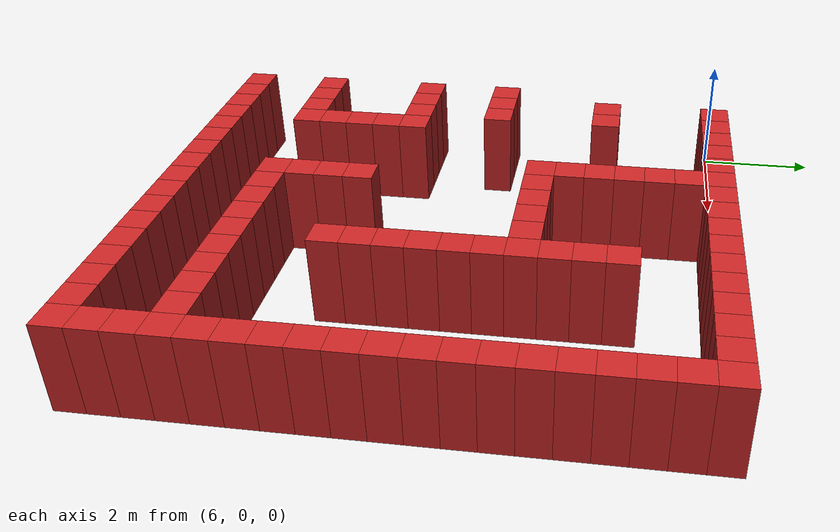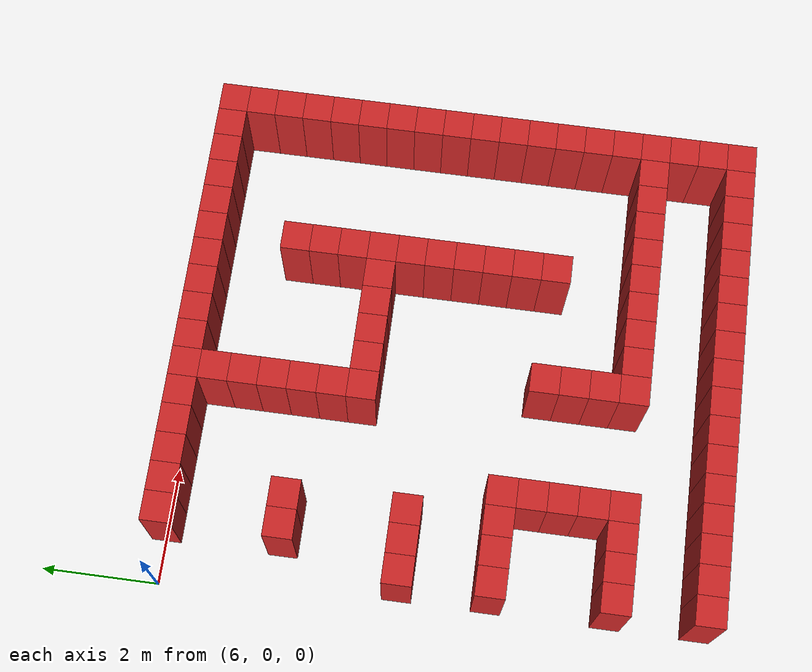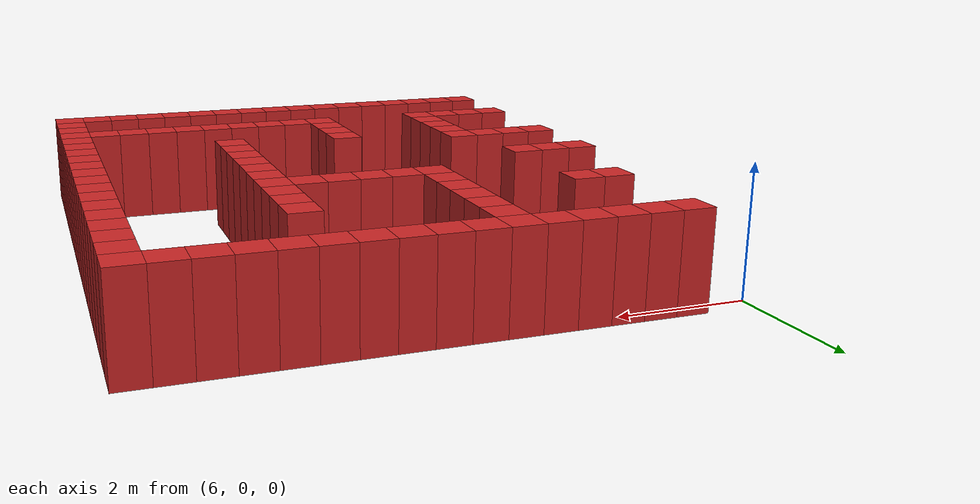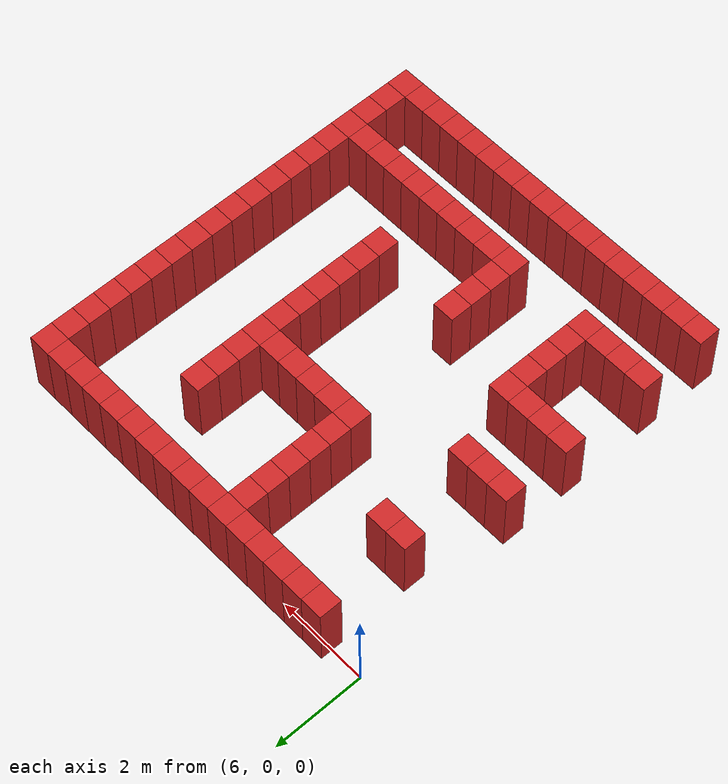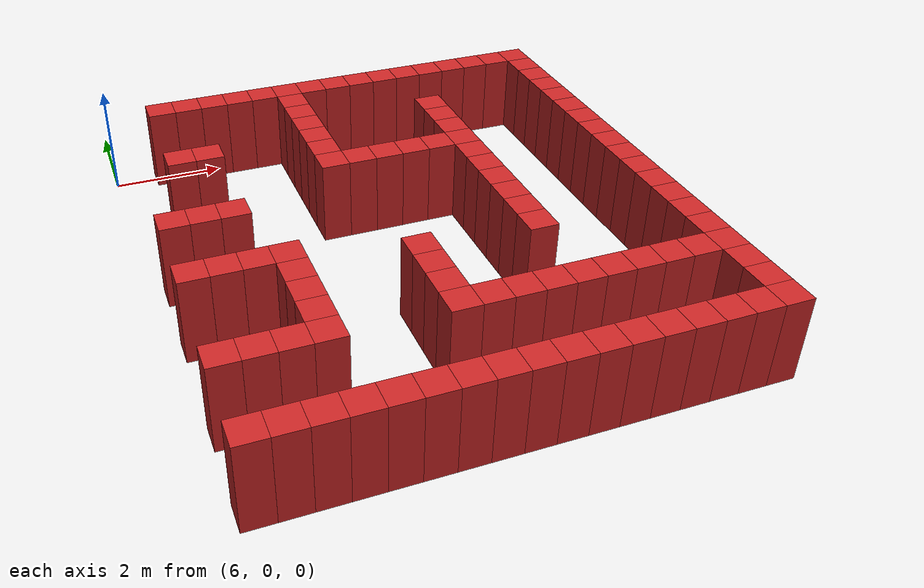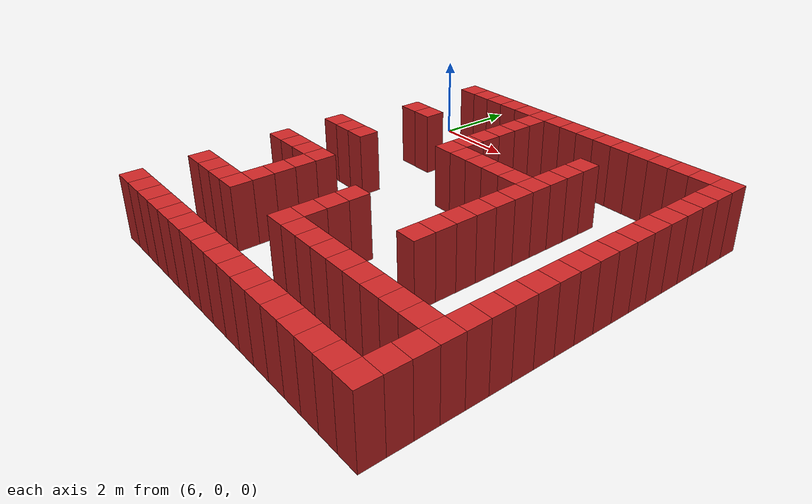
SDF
<sdf version="1.6">
 <model name="my_custom_world">
  <static>true</static>
  <link name="wall_14">
   <pose>7.0 0.0 0.75 0 0 0</pose>
   <collision name="collision"><geometry><box><size>0.5 0.5 1.5</size></box></geometry></collision>
   <visual name="visual">
    <geometry><box><size>0.5 0.5 1.5</size></box></geometry>
    <material>
     <script><uri>file://media/materials/scripts/gazebo.material</uri><name>Gazebo/Red</name></script>
    </material>
   </visual>
  </link>
  <link name="wall_15">
   <pose>7.5 0.0 0.75 0 0 0</pose>
   <collision name="collision"><geometry><box><size>0.5 0.5 1.5</size></box></geometry></collision>
   <visual name="visual">
    <geometry><box><size>0.5 0.5 1.5</size></box></geometry>
    <material>
     <script><uri>file://media/materials/scripts/gazebo.material</uri><name>Gazebo/Red</name></script>
    </material>
   </visual>
  </link>
  <link name="wall_16">
   <pose>8.0 0.0 0.75 0 0 0</pose>
   <collision name="collision"><geometry><box><size>0.5 0.5 1.5</size></box></geometry></collision>
   <visual name="visual">
    <geometry><box><size>0.5 0.5 1.5</size></box></geometry>
    <material>
     <script><uri>file://media/materials/scripts/gazebo.material</uri><name>Gazebo/Red</name></script>
    </material>
   </visual>
  </link>
  <link name="wall_17">
   <pose>8.5 0.0 0.75 0 0 0</pose>
   <collision name="collision"><geometry><box><size>0.5 0.5 1.5</size></box></geometry></collision>
   <visual name="visual">
    <geometry><box><size>0.5 0.5 1.5</size></box></geometry>
    <material>
     <script><uri>file://media/materials/scripts/gazebo.material</uri><name>Gazebo/Red</name></script>
    </material>
   </visual>
  </link>
  <link name="wall_18">
   <pose>9.0 0.0 0.75 0 0 0</pose>
   <collision name="collision"><geometry><box><size>0.5 0.5 1.5</size></box></geometry></collision>
   <visual name="visual">
    <geometry><box><size>0.5 0.5 1.5</size></box></geometry>
    <material>
     <script><uri>file://media/materials/scripts/gazebo.material</uri><name>Gazebo/Red</name></script>
    </material>
   </visual>
  </link>
  <link name="wall_19">
   <pose>9.5 0.0 0.75 0 0 0</pose>
   <collision name="collision"><geometry><box><size>0.5 0.5 1.5</size></box></geometry></collision>
   <visual name="visual">
    <geometry><box><size>0.5 0.5 1.5</size></box></geometry>
    <material>
     <script><uri>file://media/materials/scripts/gazebo.material</uri><name>Gazebo/Red</name></script>
    </material>
   </visual>
  </link>
  <link name="wall_20">
   <pose>10.0 0.0 0.75 0 0 0</pose>
   <collision name="collision"><geometry><box><size>0.5 0.5 1.5</size></box></geometry></collision>
   <visual name="visual">
    <geometry><box><size>0.5 0.5 1.5</size></box></geometry>
    <material>
     <script><uri>file://media/materials/scripts/gazebo.material</uri><name>Gazebo/Red</name></script>
    </material>
   </visual>
  </link>
  <link name="wall_21">
   <pose>10.5 0.0 0.75 0 0 0</pose>
   <collision name="collision"><geometry><box><size>0.5 0.5 1.5</size></box></geometry></collision>
   <visual name="visual">
    <geometry><box><size>0.5 0.5 1.5</size></box></geometry>
    <material>
     <script><uri>file://media/materials/scripts/gazebo.material</uri><name>Gazebo/Red</name></script>
    </material>
   </visual>
  </link>
  <link name="wall_22">
   <pose>11.0 0.0 0.75 0 0 0</pose>
   <collision name="collision"><geometry><box><size>0.5 0.5 1.5</size></box></geometry></collision>
   <visual name="visual">
    <geometry><box><size>0.5 0.5 1.5</size></box></geometry>
    <material>
     <script><uri>file://media/materials/scripts/gazebo.material</uri><name>Gazebo/Red</name></script>
    </material>
   </visual>
  </link>
  <link name="wall_23">
   <pose>11.5 0.0 0.75 0 0 0</pose>
   <collision name="collision"><geometry><box><size>0.5 0.5 1.5</size></box></geometry></collision>
   <visual name="visual">
    <geometry><box><size>0.5 0.5 1.5</size></box></geometry>
    <material>
     <script><uri>file://media/materials/scripts/gazebo.material</uri><name>Gazebo/Red</name></script>
    </material>
   </visual>
  </link>
  <link name="wall_24">
   <pose>12.0 0.0 0.75 0 0 0</pose>
   <collision name="collision"><geometry><box><size>0.5 0.5 1.5</size></box></geometry></collision>
   <visual name="visual">
    <geometry><box><size>0.5 0.5 1.5</size></box></geometry>
    <material>
     <script><uri>file://media/materials/scripts/gazebo.material</uri><name>Gazebo/Red</name></script>
    </material>
   </visual>
  </link>
  <link name="wall_25">
   <pose>12.5 0.0 0.75 0 0 0</pose>
   <collision name="collision"><geometry><box><size>0.5 0.5 1.5</size></box></geometry></collision>
   <visual name="visual">
    <geometry><box><size>0.5 0.5 1.5</size></box></geometry>
    <material>
     <script><uri>file://media/materials/scripts/gazebo.material</uri><name>Gazebo/Red</name></script>
    </material>
   </visual>
  </link>
  <link name="wall_26">
   <pose>13.0 0.0 0.75 0 0 0</pose>
   <collision name="collision"><geometry><box><size>0.5 0.5 1.5</size></box></geometry></collision>
   <visual name="visual">
    <geometry><box><size>0.5 0.5 1.5</size></box></geometry>
    <material>
     <script><uri>file://media/materials/scripts/gazebo.material</uri><name>Gazebo/Red</name></script>
    </material>
   </visual>
  </link>
  <link name="wall_27">
   <pose>13.5 0.0 0.75 0 0 0</pose>
   <collision name="collision"><geometry><box><size>0.5 0.5 1.5</size></box></geometry></collision>
   <visual name="visual">
    <geometry><box><size>0.5 0.5 1.5</size></box></geometry>
    <material>
     <script><uri>file://media/materials/scripts/gazebo.material</uri><name>Gazebo/Red</name></script>
    </material>
   </visual>
  </link>
  <link name="wall_28">
   <pose>14.0 0.0 0.75 0 0 0</pose>
   <collision name="collision"><geometry><box><size>0.5 0.5 1.5</size></box></geometry></collision>
   <visual name="visual">
    <geometry><box><size>0.5 0.5 1.5</size></box></geometry>
    <material>
     <script><uri>file://media/materials/scripts/gazebo.material</uri><name>Gazebo/Red</name></script>
    </material>
   </visual>
  </link>
  <link name="wall_29">
   <pose>14.5 0.0 0.75 0 0 0</pose>
   <collision name="collision"><geometry><box><size>0.5 0.5 1.5</size></box></geometry></collision>
   <visual name="visual">
    <geometry><box><size>0.5 0.5 1.5</size></box></geometry>
    <material>
     <script><uri>file://media/materials/scripts/gazebo.material</uri><name>Gazebo/Red</name></script>
    </material>
   </visual>
  </link>
  <link name="wall_33">
   <pose>9.5 -0.5 0.75 0 0 0</pose>
   <collision name="collision"><geometry><box><size>0.5 0.5 1.5</size></box></geometry></collision>
   <visual name="visual">
    <geometry><box><size>0.5 0.5 1.5</size></box></geometry>
    <material>
     <script><uri>file://media/materials/scripts/gazebo.material</uri><name>Gazebo/Red</name></script>
    </material>
   </visual>
  </link>
  <link name="wall_34">
   <pose>14.5 -0.5 0.75 0 0 0</pose>
   <collision name="collision"><geometry><box><size>0.5 0.5 1.5</size></box></geometry></collision>
   <visual name="visual">
    <geometry><box><size>0.5 0.5 1.5</size></box></geometry>
    <material>
     <script><uri>file://media/materials/scripts/gazebo.material</uri><name>Gazebo/Red</name></script>
    </material>
   </visual>
  </link>
  <link name="wall_38">
   <pose>9.5 -1.0 0.75 0 0 0</pose>
   <collision name="collision"><geometry><box><size>0.5 0.5 1.5</size></box></geometry></collision>
   <visual name="visual">
    <geometry><box><size>0.5 0.5 1.5</size></box></geometry>
    <material>
     <script><uri>file://media/materials/scripts/gazebo.material</uri><name>Gazebo/Red</name></script>
    </material>
   </visual>
  </link>
  <link name="wall_39">
   <pose>14.5 -1.0 0.75 0 0 0</pose>
   <collision name="collision"><geometry><box><size>0.5 0.5 1.5</size></box></geometry></collision>
   <visual name="visual">
    <geometry><box><size>0.5 0.5 1.5</size></box></geometry>
    <material>
     <script><uri>file://media/materials/scripts/gazebo.material</uri><name>Gazebo/Red</name></script>
    </material>
   </visual>
  </link>
  <link name="wall_43">
   <pose>9.5 -1.5 0.75 0 0 0</pose>
   <collision name="collision"><geometry><box><size>0.5 0.5 1.5</size></box></geometry></collision>
   <visual name="visual">
    <geometry><box><size>0.5 0.5 1.5</size></box></geometry>
    <material>
     <script><uri>file://media/materials/scripts/gazebo.material</uri><name>Gazebo/Red</name></script>
    </material>
   </visual>
  </link>
  <link name="wall_44">
   <pose>12.0 -1.5 0.75 0 0 0</pose>
   <collision name="collision"><geometry><box><size>0.5 0.5 1.5</size></box></geometry></collision>
   <visual name="visual">
    <geometry><box><size>0.5 0.5 1.5</size></box></geometry>
    <material>
     <script><uri>file://media/materials/scripts/gazebo.material</uri><name>Gazebo/Red</name></script>
    </material>
   </visual>
  </link>
  <link name="wall_45">
   <pose>14.5 -1.5 0.75 0 0 0</pose>
   <collision name="collision"><geometry><box><size>0.5 0.5 1.5</size></box></geometry></collision>
   <visual name="visual">
    <geometry><box><size>0.5 0.5 1.5</size></box></geometry>
    <material>
     <script><uri>file://media/materials/scripts/gazebo.material</uri><name>Gazebo/Red</name></script>
    </material>
   </visual>
  </link>
  <link name="wall_53">
   <pose>7.0 -2.0 0.75 0 0 0</pose>
   <collision name="collision"><geometry><box><size>0.5 0.5 1.5</size></box></geometry></collision>
   <visual name="visual">
    <geometry><box><size>0.5 0.5 1.5</size></box></geometry>
    <material>
     <script><uri>file://media/materials/scripts/gazebo.material</uri><name>Gazebo/Red</name></script>
    </material>
   </visual>
  </link>
  <link name="wall_54">
   <pose>7.5 -2.0 0.75 0 0 0</pose>
   <collision name="collision"><geometry><box><size>0.5 0.5 1.5</size></box></geometry></collision>
   <visual name="visual">
    <geometry><box><size>0.5 0.5 1.5</size></box></geometry>
    <material>
     <script><uri>file://media/materials/scripts/gazebo.material</uri><name>Gazebo/Red</name></script>
    </material>
   </visual>
  </link>
  <link name="wall_55">
   <pose>9.5 -2.0 0.75 0 0 0</pose>
   <collision name="collision"><geometry><box><size>0.5 0.5 1.5</size></box></geometry></collision>
   <visual name="visual">
    <geometry><box><size>0.5 0.5 1.5</size></box></geometry>
    <material>
     <script><uri>file://media/materials/scripts/gazebo.material</uri><name>Gazebo/Red</name></script>
    </material>
   </visual>
  </link>
  <link name="wall_56">
   <pose>12.0 -2.0 0.75 0 0 0</pose>
   <collision name="collision"><geometry><box><size>0.5 0.5 1.5</size></box></geometry></collision>
   <visual name="visual">
    <geometry><box><size>0.5 0.5 1.5</size></box></geometry>
    <material>
     <script><uri>file://media/materials/scripts/gazebo.material</uri><name>Gazebo/Red</name></script>
    </material>
   </visual>
  </link>
  <link name="wall_57">
   <pose>14.5 -2.0 0.75 0 0 0</pose>
   <collision name="collision"><geometry><box><size>0.5 0.5 1.5</size></box></geometry></collision>
   <visual name="visual">
    <geometry><box><size>0.5 0.5 1.5</size></box></geometry>
    <material>
     <script><uri>file://media/materials/scripts/gazebo.material</uri><name>Gazebo/Red</name></script>
    </material>
   </visual>
  </link>
  <link name="wall_60">
   <pose>9.5 -2.5 0.75 0 0 0</pose>
   <collision name="collision"><geometry><box><size>0.5 0.5 1.5</size></box></geometry></collision>
   <visual name="visual">
    <geometry><box><size>0.5 0.5 1.5</size></box></geometry>
    <material>
     <script><uri>file://media/materials/scripts/gazebo.material</uri><name>Gazebo/Red</name></script>
    </material>
   </visual>
  </link>
  <link name="wall_61">
   <pose>12.0 -2.5 0.75 0 0 0</pose>
   <collision name="collision"><geometry><box><size>0.5 0.5 1.5</size></box></geometry></collision>
   <visual name="visual">
    <geometry><box><size>0.5 0.5 1.5</size></box></geometry>
    <material>
     <script><uri>file://media/materials/scripts/gazebo.material</uri><name>Gazebo/Red</name></script>
    </material>
   </visual>
  </link>
  <link name="wall_62">
   <pose>14.5 -2.5 0.75 0 0 0</pose>
   <collision name="collision"><geometry><box><size>0.5 0.5 1.5</size></box></geometry></collision>
   <visual name="visual">
    <geometry><box><size>0.5 0.5 1.5</size></box></geometry>
    <material>
     <script><uri>file://media/materials/scripts/gazebo.material</uri><name>Gazebo/Red</name></script>
    </material>
   </visual>
  </link>
  <link name="wall_65">
   <pose>9.5 -3.0 0.75 0 0 0</pose>
   <collision name="collision"><geometry><box><size>0.5 0.5 1.5</size></box></geometry></collision>
   <visual name="visual">
    <geometry><box><size>0.5 0.5 1.5</size></box></geometry>
    <material>
     <script><uri>file://media/materials/scripts/gazebo.material</uri><name>Gazebo/Red</name></script>
    </material>
   </visual>
  </link>
  <link name="wall_66">
   <pose>10.0 -3.0 0.75 0 0 0</pose>
   <collision name="collision"><geometry><box><size>0.5 0.5 1.5</size></box></geometry></collision>
   <visual name="visual">
    <geometry><box><size>0.5 0.5 1.5</size></box></geometry>
    <material>
     <script><uri>file://media/materials/scripts/gazebo.material</uri><name>Gazebo/Red</name></script>
    </material>
   </visual>
  </link>
  <link name="wall_67">
   <pose>10.5 -3.0 0.75 0 0 0</pose>
   <collision name="collision"><geometry><box><size>0.5 0.5 1.5</size></box></geometry></collision>
   <visual name="visual">
    <geometry><box><size>0.5 0.5 1.5</size></box></geometry>
    <material>
     <script><uri>file://media/materials/scripts/gazebo.material</uri><name>Gazebo/Red</name></script>
    </material>
   </visual>
  </link>
  <link name="wall_68">
   <pose>11.0 -3.0 0.75 0 0 0</pose>
   <collision name="collision"><geometry><box><size>0.5 0.5 1.5</size></box></geometry></collision>
   <visual name="visual">
    <geometry><box><size>0.5 0.5 1.5</size></box></geometry>
    <material>
     <script><uri>file://media/materials/scripts/gazebo.material</uri><name>Gazebo/Red</name></script>
    </material>
   </visual>
  </link>
  <link name="wall_69">
   <pose>11.5 -3.0 0.75 0 0 0</pose>
   <collision name="collision"><geometry><box><size>0.5 0.5 1.5</size></box></geometry></collision>
   <visual name="visual">
    <geometry><box><size>0.5 0.5 1.5</size></box></geometry>
    <material>
     <script><uri>file://media/materials/scripts/gazebo.material</uri><name>Gazebo/Red</name></script>
    </material>
   </visual>
  </link>
  <link name="wall_70">
   <pose>12.0 -3.0 0.75 0 0 0</pose>
   <collision name="collision"><geometry><box><size>0.5 0.5 1.5</size></box></geometry></collision>
   <visual name="visual">
    <geometry><box><size>0.5 0.5 1.5</size></box></geometry>
    <material>
     <script><uri>file://media/materials/scripts/gazebo.material</uri><name>Gazebo/Red</name></script>
    </material>
   </visual>
  </link>
  <link name="wall_71">
   <pose>14.5 -3.0 0.75 0 0 0</pose>
   <collision name="collision"><geometry><box><size>0.5 0.5 1.5</size></box></geometry></collision>
   <visual name="visual">
    <geometry><box><size>0.5 0.5 1.5</size></box></geometry>
    <material>
     <script><uri>file://media/materials/scripts/gazebo.material</uri><name>Gazebo/Red</name></script>
    </material>
   </visual>
  </link>
  <link name="wall_78">
   <pose>12.0 -3.5 0.75 0 0 0</pose>
   <collision name="collision"><geometry><box><size>0.5 0.5 1.5</size></box></geometry></collision>
   <visual name="visual">
    <geometry><box><size>0.5 0.5 1.5</size></box></geometry>
    <material>
     <script><uri>file://media/materials/scripts/gazebo.material</uri><name>Gazebo/Red</name></script>
    </material>
   </visual>
  </link>
  <link name="wall_79">
   <pose>14.5 -3.5 0.75 0 0 0</pose>
   <collision name="collision"><geometry><box><size>0.5 0.5 1.5</size></box></geometry></collision>
   <visual name="visual">
    <geometry><box><size>0.5 0.5 1.5</size></box></geometry>
    <material>
     <script><uri>file://media/materials/scripts/gazebo.material</uri><name>Gazebo/Red</name></script>
    </material>
   </visual>
  </link>
  <link name="wall_91">
   <pose>6.5 -4.0 0.75 0 0 0</pose>
   <collision name="collision"><geometry><box><size>0.5 0.5 1.5</size></box></geometry></collision>
   <visual name="visual">
    <geometry><box><size>0.5 0.5 1.5</size></box></geometry>
    <material>
     <script><uri>file://media/materials/scripts/gazebo.material</uri><name>Gazebo/Red</name></script>
    </material>
   </visual>
  </link>
  <link name="wall_92">
   <pose>7.0 -4.0 0.75 0 0 0</pose>
   <collision name="collision"><geometry><box><size>0.5 0.5 1.5</size></box></geometry></collision>
   <visual name="visual">
    <geometry><box><size>0.5 0.5 1.5</size></box></geometry>
    <material>
     <script><uri>file://media/materials/scripts/gazebo.material</uri><name>Gazebo/Red</name></script>
    </material>
   </visual>
  </link>
  <link name="wall_93">
   <pose>7.5 -4.0 0.75 0 0 0</pose>
   <collision name="collision"><geometry><box><size>0.5 0.5 1.5</size></box></geometry></collision>
   <visual name="visual">
    <geometry><box><size>0.5 0.5 1.5</size></box></geometry>
    <material>
     <script><uri>file://media/materials/scripts/gazebo.material</uri><name>Gazebo/Red</name></script>
    </material>
   </visual>
  </link>
  <link name="wall_94">
   <pose>12.0 -4.0 0.75 0 0 0</pose>
   <collision name="collision"><geometry><box><size>0.5 0.5 1.5</size></box></geometry></collision>
   <visual name="visual">
    <geometry><box><size>0.5 0.5 1.5</size></box></geometry>
    <material>
     <script><uri>file://media/materials/scripts/gazebo.material</uri><name>Gazebo/Red</name></script>
    </material>
   </visual>
  </link>
  <link name="wall_95">
   <pose>14.5 -4.0 0.75 0 0 0</pose>
   <collision name="collision"><geometry><box><size>0.5 0.5 1.5</size></box></geometry></collision>
   <visual name="visual">
    <geometry><box><size>0.5 0.5 1.5</size></box></geometry>
    <material>
     <script><uri>file://media/materials/scripts/gazebo.material</uri><name>Gazebo/Red</name></script>
    </material>
   </visual>
  </link>
  <link name="wall_97">
   <pose>12.0 -4.5 0.75 0 0 0</pose>
   <collision name="collision"><geometry><box><size>0.5 0.5 1.5</size></box></geometry></collision>
   <visual name="visual">
    <geometry><box><size>0.5 0.5 1.5</size></box></geometry>
    <material>
     <script><uri>file://media/materials/scripts/gazebo.material</uri><name>Gazebo/Red</name></script>
    </material>
   </visual>
  </link>
  <link name="wall_98">
   <pose>14.5 -4.5 0.75 0 0 0</pose>
   <collision name="collision"><geometry><box><size>0.5 0.5 1.5</size></box></geometry></collision>
   <visual name="visual">
    <geometry><box><size>0.5 0.5 1.5</size></box></geometry>
    <material>
     <script><uri>file://media/materials/scripts/gazebo.material</uri><name>Gazebo/Red</name></script>
    </material>
   </visual>
  </link>
  <link name="wall_100">
   <pose>12.0 -5.0 0.75 0 0 0</pose>
   <collision name="collision"><geometry><box><size>0.5 0.5 1.5</size></box></geometry></collision>
   <visual name="visual">
    <geometry><box><size>0.5 0.5 1.5</size></box></geometry>
    <material>
     <script><uri>file://media/materials/scripts/gazebo.material</uri><name>Gazebo/Red</name></script>
    </material>
   </visual>
  </link>
  <link name="wall_101">
   <pose>14.5 -5.0 0.75 0 0 0</pose>
   <collision name="collision"><geometry><box><size>0.5 0.5 1.5</size></box></geometry></collision>
   <visual name="visual">
    <geometry><box><size>0.5 0.5 1.5</size></box></geometry>
    <material>
     <script><uri>file://media/materials/scripts/gazebo.material</uri><name>Gazebo/Red</name></script>
    </material>
   </visual>
  </link>
  <link name="wall_115">
   <pose>6.5 -5.5 0.75 0 0 0</pose>
   <collision name="collision"><geometry><box><size>0.5 0.5 1.5</size></box></geometry></collision>
   <visual name="visual">
    <geometry><box><size>0.5 0.5 1.5</size></box></geometry>
    <material>
     <script><uri>file://media/materials/scripts/gazebo.material</uri><name>Gazebo/Red</name></script>
    </material>
   </visual>
  </link>
  <link name="wall_116">
   <pose>7.0 -5.5 0.75 0 0 0</pose>
   <collision name="collision"><geometry><box><size>0.5 0.5 1.5</size></box></geometry></collision>
   <visual name="visual">
    <geometry><box><size>0.5 0.5 1.5</size></box></geometry>
    <material>
     <script><uri>file://media/materials/scripts/gazebo.material</uri><name>Gazebo/Red</name></script>
    </material>
   </visual>
  </link>
  <link name="wall_117">
   <pose>7.5 -5.5 0.75 0 0 0</pose>
   <collision name="collision"><geometry><box><size>0.5 0.5 1.5</size></box></geometry></collision>
   <visual name="visual">
    <geometry><box><size>0.5 0.5 1.5</size></box></geometry>
    <material>
     <script><uri>file://media/materials/scripts/gazebo.material</uri><name>Gazebo/Red</name></script>
    </material>
   </visual>
  </link>
  <link name="wall_118">
   <pose>8.0 -5.5 0.75 0 0 0</pose>
   <collision name="collision"><geometry><box><size>0.5 0.5 1.5</size></box></geometry></collision>
   <visual name="visual">
    <geometry><box><size>0.5 0.5 1.5</size></box></geometry>
    <material>
     <script><uri>file://media/materials/scripts/gazebo.material</uri><name>Gazebo/Red</name></script>
    </material>
   </visual>
  </link>
  <link name="wall_119">
   <pose>12.0 -5.5 0.75 0 0 0</pose>
   <collision name="collision"><geometry><box><size>0.5 0.5 1.5</size></box></geometry></collision>
   <visual name="visual">
    <geometry><box><size>0.5 0.5 1.5</size></box></geometry>
    <material>
     <script><uri>file://media/materials/scripts/gazebo.material</uri><name>Gazebo/Red</name></script>
    </material>
   </visual>
  </link>
  <link name="wall_120">
   <pose>14.5 -5.5 0.75 0 0 0</pose>
   <collision name="collision"><geometry><box><size>0.5 0.5 1.5</size></box></geometry></collision>
   <visual name="visual">
    <geometry><box><size>0.5 0.5 1.5</size></box></geometry>
    <material>
     <script><uri>file://media/materials/scripts/gazebo.material</uri><name>Gazebo/Red</name></script>
    </material>
   </visual>
  </link>
  <link name="wall_122">
   <pose>8.0 -6.0 0.75 0 0 0</pose>
   <collision name="collision"><geometry><box><size>0.5 0.5 1.5</size></box></geometry></collision>
   <visual name="visual">
    <geometry><box><size>0.5 0.5 1.5</size></box></geometry>
    <material>
     <script><uri>file://media/materials/scripts/gazebo.material</uri><name>Gazebo/Red</name></script>
    </material>
   </visual>
  </link>
  <link name="wall_123">
   <pose>10.0 -6.0 0.75 0 0 0</pose>
   <collision name="collision"><geometry><box><size>0.5 0.5 1.5</size></box></geometry></collision>
   <visual name="visual">
    <geometry><box><size>0.5 0.5 1.5</size></box></geometry>
    <material>
     <script><uri>file://media/materials/scripts/gazebo.material</uri><name>Gazebo/Red</name></script>
    </material>
   </visual>
  </link>
  <link name="wall_124">
   <pose>12.0 -6.0 0.75 0 0 0</pose>
   <collision name="collision"><geometry><box><size>0.5 0.5 1.5</size></box></geometry></collision>
   <visual name="visual">
    <geometry><box><size>0.5 0.5 1.5</size></box></geometry>
    <material>
     <script><uri>file://media/materials/scripts/gazebo.material</uri><name>Gazebo/Red</name></script>
    </material>
   </visual>
  </link>
  <link name="wall_125">
   <pose>14.5 -6.0 0.75 0 0 0</pose>
   <collision name="collision"><geometry><box><size>0.5 0.5 1.5</size></box></geometry></collision>
   <visual name="visual">
    <geometry><box><size>0.5 0.5 1.5</size></box></geometry>
    <material>
     <script><uri>file://media/materials/scripts/gazebo.material</uri><name>Gazebo/Red</name></script>
    </material>
   </visual>
  </link>
  <link name="wall_127">
   <pose>8.0 -6.5 0.75 0 0 0</pose>
   <collision name="collision"><geometry><box><size>0.5 0.5 1.5</size></box></geometry></collision>
   <visual name="visual">
    <geometry><box><size>0.5 0.5 1.5</size></box></geometry>
    <material>
     <script><uri>file://media/materials/scripts/gazebo.material</uri><name>Gazebo/Red</name></script>
    </material>
   </visual>
  </link>
  <link name="wall_128">
   <pose>10.0 -6.5 0.75 0 0 0</pose>
   <collision name="collision"><geometry><box><size>0.5 0.5 1.5</size></box></geometry></collision>
   <visual name="visual">
    <geometry><box><size>0.5 0.5 1.5</size></box></geometry>
    <material>
     <script><uri>file://media/materials/scripts/gazebo.material</uri><name>Gazebo/Red</name></script>
    </material>
   </visual>
  </link>
  <link name="wall_129">
   <pose>14.5 -6.5 0.75 0 0 0</pose>
   <collision name="collision"><geometry><box><size>0.5 0.5 1.5</size></box></geometry></collision>
   <visual name="visual">
    <geometry><box><size>0.5 0.5 1.5</size></box></geometry>
    <material>
     <script><uri>file://media/materials/scripts/gazebo.material</uri><name>Gazebo/Red</name></script>
    </material>
   </visual>
  </link>
  <link name="wall_140">
   <pose>8.0 -7.0 0.75 0 0 0</pose>
   <collision name="collision"><geometry><box><size>0.5 0.5 1.5</size></box></geometry></collision>
   <visual name="visual">
    <geometry><box><size>0.5 0.5 1.5</size></box></geometry>
    <material>
     <script><uri>file://media/materials/scripts/gazebo.material</uri><name>Gazebo/Red</name></script>
    </material>
   </visual>
  </link>
  <link name="wall_141">
   <pose>10.0 -7.0 0.75 0 0 0</pose>
   <collision name="collision"><geometry><box><size>0.5 0.5 1.5</size></box></geometry></collision>
   <visual name="visual">
    <geometry><box><size>0.5 0.5 1.5</size></box></geometry>
    <material>
     <script><uri>file://media/materials/scripts/gazebo.material</uri><name>Gazebo/Red</name></script>
    </material>
   </visual>
  </link>
  <link name="wall_142">
   <pose>14.5 -7.0 0.75 0 0 0</pose>
   <collision name="collision"><geometry><box><size>0.5 0.5 1.5</size></box></geometry></collision>
   <visual name="visual">
    <geometry><box><size>0.5 0.5 1.5</size></box></geometry>
    <material>
     <script><uri>file://media/materials/scripts/gazebo.material</uri><name>Gazebo/Red</name></script>
    </material>
   </visual>
  </link>
  <link name="wall_149">
   <pose>6.5 -7.5 0.75 0 0 0</pose>
   <collision name="collision"><geometry><box><size>0.5 0.5 1.5</size></box></geometry></collision>
   <visual name="visual">
    <geometry><box><size>0.5 0.5 1.5</size></box></geometry>
    <material>
     <script><uri>file://media/materials/scripts/gazebo.material</uri><name>Gazebo/Red</name></script>
    </material>
   </visual>
  </link>
  <link name="wall_150">
   <pose>7.0 -7.5 0.75 0 0 0</pose>
   <collision name="collision"><geometry><box><size>0.5 0.5 1.5</size></box></geometry></collision>
   <visual name="visual">
    <geometry><box><size>0.5 0.5 1.5</size></box></geometry>
    <material>
     <script><uri>file://media/materials/scripts/gazebo.material</uri><name>Gazebo/Red</name></script>
    </material>
   </visual>
  </link>
  <link name="wall_151">
   <pose>7.5 -7.5 0.75 0 0 0</pose>
   <collision name="collision"><geometry><box><size>0.5 0.5 1.5</size></box></geometry></collision>
   <visual name="visual">
    <geometry><box><size>0.5 0.5 1.5</size></box></geometry>
    <material>
     <script><uri>file://media/materials/scripts/gazebo.material</uri><name>Gazebo/Red</name></script>
    </material>
   </visual>
  </link>
  <link name="wall_152">
   <pose>8.0 -7.5 0.75 0 0 0</pose>
   <collision name="collision"><geometry><box><size>0.5 0.5 1.5</size></box></geometry></collision>
   <visual name="visual">
    <geometry><box><size>0.5 0.5 1.5</size></box></geometry>
    <material>
     <script><uri>file://media/materials/scripts/gazebo.material</uri><name>Gazebo/Red</name></script>
    </material>
   </visual>
  </link>
  <link name="wall_153">
   <pose>10.0 -7.5 0.75 0 0 0</pose>
   <collision name="collision"><geometry><box><size>0.5 0.5 1.5</size></box></geometry></collision>
   <visual name="visual">
    <geometry><box><size>0.5 0.5 1.5</size></box></geometry>
    <material>
     <script><uri>file://media/materials/scripts/gazebo.material</uri><name>Gazebo/Red</name></script>
    </material>
   </visual>
  </link>
  <link name="wall_154">
   <pose>10.5 -7.5 0.75 0 0 0</pose>
   <collision name="collision"><geometry><box><size>0.5 0.5 1.5</size></box></geometry></collision>
   <visual name="visual">
    <geometry><box><size>0.5 0.5 1.5</size></box></geometry>
    <material>
     <script><uri>file://media/materials/scripts/gazebo.material</uri><name>Gazebo/Red</name></script>
    </material>
   </visual>
  </link>
  <link name="wall_155">
   <pose>11.0 -7.5 0.75 0 0 0</pose>
   <collision name="collision"><geometry><box><size>0.5 0.5 1.5</size></box></geometry></collision>
   <visual name="visual">
    <geometry><box><size>0.5 0.5 1.5</size></box></geometry>
    <material>
     <script><uri>file://media/materials/scripts/gazebo.material</uri><name>Gazebo/Red</name></script>
    </material>
   </visual>
  </link>
  <link name="wall_156">
   <pose>11.5 -7.5 0.75 0 0 0</pose>
   <collision name="collision"><geometry><box><size>0.5 0.5 1.5</size></box></geometry></collision>
   <visual name="visual">
    <geometry><box><size>0.5 0.5 1.5</size></box></geometry>
    <material>
     <script><uri>file://media/materials/scripts/gazebo.material</uri><name>Gazebo/Red</name></script>
    </material>
   </visual>
  </link>
  <link name="wall_157">
   <pose>12.0 -7.5 0.75 0 0 0</pose>
   <collision name="collision"><geometry><box><size>0.5 0.5 1.5</size></box></geometry></collision>
   <visual name="visual">
    <geometry><box><size>0.5 0.5 1.5</size></box></geometry>
    <material>
     <script><uri>file://media/materials/scripts/gazebo.material</uri><name>Gazebo/Red</name></script>
    </material>
   </visual>
  </link>
  <link name="wall_158">
   <pose>12.5 -7.5 0.75 0 0 0</pose>
   <collision name="collision"><geometry><box><size>0.5 0.5 1.5</size></box></geometry></collision>
   <visual name="visual">
    <geometry><box><size>0.5 0.5 1.5</size></box></geometry>
    <material>
     <script><uri>file://media/materials/scripts/gazebo.material</uri><name>Gazebo/Red</name></script>
    </material>
   </visual>
  </link>
  <link name="wall_159">
   <pose>13.0 -7.5 0.75 0 0 0</pose>
   <collision name="collision"><geometry><box><size>0.5 0.5 1.5</size></box></geometry></collision>
   <visual name="visual">
    <geometry><box><size>0.5 0.5 1.5</size></box></geometry>
    <material>
     <script><uri>file://media/materials/scripts/gazebo.material</uri><name>Gazebo/Red</name></script>
    </material>
   </visual>
  </link>
  <link name="wall_160">
   <pose>13.5 -7.5 0.75 0 0 0</pose>
   <collision name="collision"><geometry><box><size>0.5 0.5 1.5</size></box></geometry></collision>
   <visual name="visual">
    <geometry><box><size>0.5 0.5 1.5</size></box></geometry>
    <material>
     <script><uri>file://media/materials/scripts/gazebo.material</uri><name>Gazebo/Red</name></script>
    </material>
   </visual>
  </link>
  <link name="wall_161">
   <pose>14.0 -7.5 0.75 0 0 0</pose>
   <collision name="collision"><geometry><box><size>0.5 0.5 1.5</size></box></geometry></collision>
   <visual name="visual">
    <geometry><box><size>0.5 0.5 1.5</size></box></geometry>
    <material>
     <script><uri>file://media/materials/scripts/gazebo.material</uri><name>Gazebo/Red</name></script>
    </material>
   </visual>
  </link>
  <link name="wall_162">
   <pose>14.5 -7.5 0.75 0 0 0</pose>
   <collision name="collision"><geometry><box><size>0.5 0.5 1.5</size></box></geometry></collision>
   <visual name="visual">
    <geometry><box><size>0.5 0.5 1.5</size></box></geometry>
    <material>
     <script><uri>file://media/materials/scripts/gazebo.material</uri><name>Gazebo/Red</name></script>
    </material>
   </visual>
  </link>
  <link name="wall_164">
   <pose>14.5 -8.0 0.75 0 0 0</pose>
   <collision name="collision"><geometry><box><size>0.5 0.5 1.5</size></box></geometry></collision>
   <visual name="visual">
    <geometry><box><size>0.5 0.5 1.5</size></box></geometry>
    <material>
     <script><uri>file://media/materials/scripts/gazebo.material</uri><name>Gazebo/Red</name></script>
    </material>
   </visual>
  </link>
  <link name="wall_166">
   <pose>14.5 -8.5 0.75 0 0 0</pose>
   <collision name="collision"><geometry><box><size>0.5 0.5 1.5</size></box></geometry></collision>
   <visual name="visual">
    <geometry><box><size>0.5 0.5 1.5</size></box></geometry>
    <material>
     <script><uri>file://media/materials/scripts/gazebo.material</uri><name>Gazebo/Red</name></script>
    </material>
   </visual>
  </link>
  <link name="wall_180">
   <pose>6.5 -9.0 0.75 0 0 0</pose>
   <collision name="collision"><geometry><box><size>0.5 0.5 1.5</size></box></geometry></collision>
   <visual name="visual">
    <geometry><box><size>0.5 0.5 1.5</size></box></geometry>
    <material>
     <script><uri>file://media/materials/scripts/gazebo.material</uri><name>Gazebo/Red</name></script>
    </material>
   </visual>
  </link>
  <link name="wall_181">
   <pose>7.0 -9.0 0.75 0 0 0</pose>
   <collision name="collision"><geometry><box><size>0.5 0.5 1.5</size></box></geometry></collision>
   <visual name="visual">
    <geometry><box><size>0.5 0.5 1.5</size></box></geometry>
    <material>
     <script><uri>file://media/materials/scripts/gazebo.material</uri><name>Gazebo/Red</name></script>
    </material>
   </visual>
  </link>
  <link name="wall_182">
   <pose>7.5 -9.0 0.75 0 0 0</pose>
   <collision name="collision"><geometry><box><size>0.5 0.5 1.5</size></box></geometry></collision>
   <visual name="visual">
    <geometry><box><size>0.5 0.5 1.5</size></box></geometry>
    <material>
     <script><uri>file://media/materials/scripts/gazebo.material</uri><name>Gazebo/Red</name></script>
    </material>
   </visual>
  </link>
  <link name="wall_183">
   <pose>8.0 -9.0 0.75 0 0 0</pose>
   <collision name="collision"><geometry><box><size>0.5 0.5 1.5</size></box></geometry></collision>
   <visual name="visual">
    <geometry><box><size>0.5 0.5 1.5</size></box></geometry>
    <material>
     <script><uri>file://media/materials/scripts/gazebo.material</uri><name>Gazebo/Red</name></script>
    </material>
   </visual>
  </link>
  <link name="wall_184">
   <pose>8.5 -9.0 0.75 0 0 0</pose>
   <collision name="collision"><geometry><box><size>0.5 0.5 1.5</size></box></geometry></collision>
   <visual name="visual">
    <geometry><box><size>0.5 0.5 1.5</size></box></geometry>
    <material>
     <script><uri>file://media/materials/scripts/gazebo.material</uri><name>Gazebo/Red</name></script>
    </material>
   </visual>
  </link>
  <link name="wall_185">
   <pose>9.0 -9.0 0.75 0 0 0</pose>
   <collision name="collision"><geometry><box><size>0.5 0.5 1.5</size></box></geometry></collision>
   <visual name="visual">
    <geometry><box><size>0.5 0.5 1.5</size></box></geometry>
    <material>
     <script><uri>file://media/materials/scripts/gazebo.material</uri><name>Gazebo/Red</name></script>
    </material>
   </visual>
  </link>
  <link name="wall_186">
   <pose>9.5 -9.0 0.75 0 0 0</pose>
   <collision name="collision"><geometry><box><size>0.5 0.5 1.5</size></box></geometry></collision>
   <visual name="visual">
    <geometry><box><size>0.5 0.5 1.5</size></box></geometry>
    <material>
     <script><uri>file://media/materials/scripts/gazebo.material</uri><name>Gazebo/Red</name></script>
    </material>
   </visual>
  </link>
  <link name="wall_187">
   <pose>10.0 -9.0 0.75 0 0 0</pose>
   <collision name="collision"><geometry><box><size>0.5 0.5 1.5</size></box></geometry></collision>
   <visual name="visual">
    <geometry><box><size>0.5 0.5 1.5</size></box></geometry>
    <material>
     <script><uri>file://media/materials/scripts/gazebo.material</uri><name>Gazebo/Red</name></script>
    </material>
   </visual>
  </link>
  <link name="wall_188">
   <pose>10.5 -9.0 0.75 0 0 0</pose>
   <collision name="collision"><geometry><box><size>0.5 0.5 1.5</size></box></geometry></collision>
   <visual name="visual">
    <geometry><box><size>0.5 0.5 1.5</size></box></geometry>
    <material>
     <script><uri>file://media/materials/scripts/gazebo.material</uri><name>Gazebo/Red</name></script>
    </material>
   </visual>
  </link>
  <link name="wall_189">
   <pose>11.0 -9.0 0.75 0 0 0</pose>
   <collision name="collision"><geometry><box><size>0.5 0.5 1.5</size></box></geometry></collision>
   <visual name="visual">
    <geometry><box><size>0.5 0.5 1.5</size></box></geometry>
    <material>
     <script><uri>file://media/materials/scripts/gazebo.material</uri><name>Gazebo/Red</name></script>
    </material>
   </visual>
  </link>
  <link name="wall_190">
   <pose>11.5 -9.0 0.75 0 0 0</pose>
   <collision name="collision"><geometry><box><size>0.5 0.5 1.5</size></box></geometry></collision>
   <visual name="visual">
    <geometry><box><size>0.5 0.5 1.5</size></box></geometry>
    <material>
     <script><uri>file://media/materials/scripts/gazebo.material</uri><name>Gazebo/Red</name></script>
    </material>
   </visual>
  </link>
  <link name="wall_191">
   <pose>12.0 -9.0 0.75 0 0 0</pose>
   <collision name="collision"><geometry><box><size>0.5 0.5 1.5</size></box></geometry></collision>
   <visual name="visual">
    <geometry><box><size>0.5 0.5 1.5</size></box></geometry>
    <material>
     <script><uri>file://media/materials/scripts/gazebo.material</uri><name>Gazebo/Red</name></script>
    </material>
   </visual>
  </link>
  <link name="wall_192">
   <pose>12.5 -9.0 0.75 0 0 0</pose>
   <collision name="collision"><geometry><box><size>0.5 0.5 1.5</size></box></geometry></collision>
   <visual name="visual">
    <geometry><box><size>0.5 0.5 1.5</size></box></geometry>
    <material>
     <script><uri>file://media/materials/scripts/gazebo.material</uri><name>Gazebo/Red</name></script>
    </material>
   </visual>
  </link>
  <link name="wall_193">
   <pose>13.0 -9.0 0.75 0 0 0</pose>
   <collision name="collision"><geometry><box><size>0.5 0.5 1.5</size></box></geometry></collision>
   <visual name="visual">
    <geometry><box><size>0.5 0.5 1.5</size></box></geometry>
    <material>
     <script><uri>file://media/materials/scripts/gazebo.material</uri><name>Gazebo/Red</name></script>
    </material>
   </visual>
  </link>
  <link name="wall_194">
   <pose>13.5 -9.0 0.75 0 0 0</pose>
   <collision name="collision"><geometry><box><size>0.5 0.5 1.5</size></box></geometry></collision>
   <visual name="visual">
    <geometry><box><size>0.5 0.5 1.5</size></box></geometry>
    <material>
     <script><uri>file://media/materials/scripts/gazebo.material</uri><name>Gazebo/Red</name></script>
    </material>
   </visual>
  </link>
  <link name="wall_195">
   <pose>14.0 -9.0 0.75 0 0 0</pose>
   <collision name="collision"><geometry><box><size>0.5 0.5 1.5</size></box></geometry></collision>
   <visual name="visual">
    <geometry><box><size>0.5 0.5 1.5</size></box></geometry>
    <material>
     <script><uri>file://media/materials/scripts/gazebo.material</uri><name>Gazebo/Red</name></script>
    </material>
   </visual>
  </link>
  <link name="wall_196">
   <pose>14.5 -9.0 0.75 0 0 0</pose>
   <collision name="collision"><geometry><box><size>0.5 0.5 1.5</size></box></geometry></collision>
   <visual name="visual">
    <geometry><box><size>0.5 0.5 1.5</size></box></geometry>
    <material>
     <script><uri>file://media/materials/scripts/gazebo.material</uri><name>Gazebo/Red</name></script>
    </material>
   </visual>
  </link>
 </model>
</sdf>
